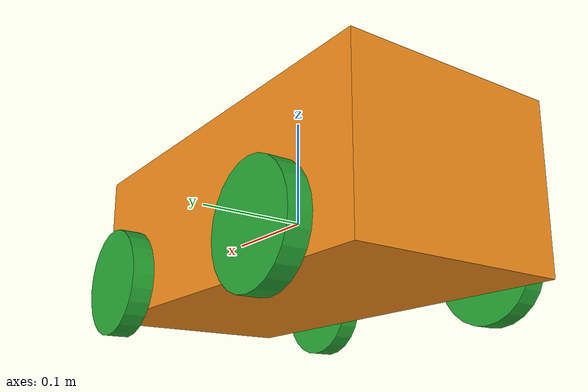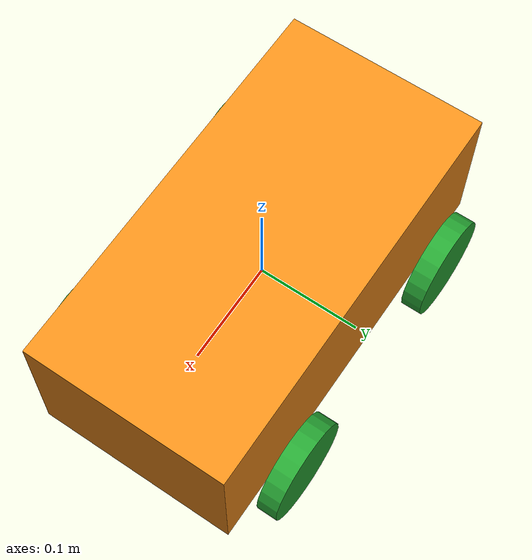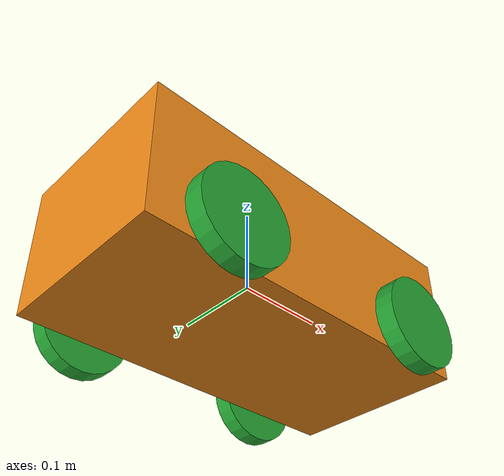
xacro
<?xml version='1.0'?>

<robot name="test_bot" xmlns:xacro="http://www.ros.org/wiki/xacro">

  <!-- RViz colors -->
  <xacro:include filename="$(find urdf_examples)/urdf/materials.xacro" />

  <link name="base_footprint"></link>

  <joint name="base_footprint_joint" type="fixed">
    <origin xyz="0 0 0" rpy="0 0 0" />
    <parent link="base_footprint"/>
    <child link="base_link" />
  </joint>

  <!-- Robot chassis -->
  <link name='base_link'>
    <pose>0 0 0.1 0 0 0</pose>

    <inertial>
      <mass value="15.0"/>
      <origin xyz="0.0 0 0" rpy="0 0 0"/>
      <inertia
          ixx="0.1" ixy="0" ixz="0"
          iyy="0.1" iyz="0"
          izz="0.1"
      />
    </inertial>

    <collision name='collision'>
      <origin xyz="0 0 0" rpy="0 0 0"/>
      <geometry>
        <box size=".4 .2 .15"/>
      </geometry>
    </collision>

    <visual name='base_link_visual'>
      <origin xyz="0 0 0" rpy="0 0 0"/>
      <geometry>
        <box size=".4 .2 .15"/>
        <!--mesh filename = "package://urdf_examples/meshes/base_link.dae"/-->
      </geometry>
      <material name="orange"/>
    </visual>

  </link>

  <!-- Wheels -->
  <joint type="continuous" name="left_front_wheel_joint">
    <origin xyz="0.12 0.12 -0.05" rpy="0 0 0"/>
    <child link="left_front_wheel"/>
    <parent link="base_link"/>
    <axis xyz="0 1 0" rpy="0 0 0"/>
    <limit effort="10000" velocity="1000"/>
    <dynamics damping="1.0" friction="1.0"/>
  </joint>

  <link name='left_front_wheel'>
    <inertial>
      <mass value="5.0"/>
      <origin xyz="0 0 0" rpy="0 1.5707 1.5707"/>
      <inertia
          ixx="0.1" ixy="0" ixz="0"
          iyy="0.1" iyz="0"
          izz="0.1"
      />
    </inertial>

    <collision name='collision'>
      <origin xyz="0 0 0" rpy="0 1.5707 1.5707"/>
      <geometry>
        <cylinder radius="0.05" length=".02"/>
      </geometry>
    </collision>

    <visual name='left_front_wheel_visual'>
      <origin xyz="0 0 0" rpy="0 1.5707 1.5707"/>
      <geometry>
        <cylinder radius="0.05" length=".02"/>
        <!--mesh filename = "package://urdf_examples/meshes/wheel.dae"/-->
      </geometry>
      <material name="green"/>
    </visual>
  </link>

  <joint type="continuous" name="right_front_wheel_joint">
    <origin xyz="0.12 -0.12 -0.05" rpy="0 0 0"/>
    <child link="right_front_wheel"/>
    <parent link="base_link"/>
    <axis xyz="0 1 0" rpy="0 0 0"/>
    <limit effort="10000" velocity="1000"/>
    <dynamics damping="1.0" friction="1.0"/>
  </joint>

  <link name='right_front_wheel'>
    <inertial>
      <mass value="5.0"/>
      <origin xyz="0 0 0" rpy="0 1.5707 1.5707"/>
      <inertia
          ixx="0.1" ixy="0" ixz="0"
          iyy="0.1" iyz="0"
          izz="0.1"
      />
    </inertial>

    <collision name='collision'>
      <origin xyz="0 0 0" rpy="0 1.5707 1.5707"/>
      <geometry>
        <cylinder radius="0.05" length=".02"/>
      </geometry>
    </collision>

    <visual name='right_front_wheel_visual'>
      <origin xyz="0 0 0" rpy="0 1.5707 1.5707"/>
      <geometry>
        <cylinder radius="0.05" length=".02"/>
        <!--mesh filename = "package://urdf_examples/meshes/wheel.dae"/-->
      </geometry>
      <material name="green"/>
    </visual>
  </link>

  <joint type="continuous" name="left_rear_wheel_joint">
    <origin xyz="-0.12 0.12 -0.05" rpy="0 0 0"/>
    <child link="left_rear_wheel"/>
    <parent link="base_link"/>
    <axis xyz="0 1 0" rpy="0 0 0"/>
    <limit effort="10000" velocity="1000"/>
    <dynamics damping="1.0" friction="1.0"/>
  </joint>

  <link name='left_rear_wheel'>
    <inertial>
      <mass value="5.0"/>
      <origin xyz="0 0 0" rpy="0 1.5707 1.5707"/>
      <inertia
          ixx="0.1" ixy="0" ixz="0"
          iyy="0.1" iyz="0"
          izz="0.1"
      />
    </inertial>

    <collision name='collision'>
      <origin xyz="0 0 0" rpy="0 1.5707 1.5707"/>
      <geometry>
        <cylinder radius="0.05" length=".02"/>
      </geometry>
    </collision>

    <visual name='left_rear_wheel_visual'>
      <origin xyz="0 0 0" rpy="0 1.5707 1.5707"/>
      <geometry>
        <cylinder radius="0.05" length=".02"/>
        <!--mesh filename = "package://urdf_examples/meshes/wheel.dae"/-->
      </geometry>
      <material name="green"/>
    </visual>
  </link>

  <joint type="continuous" name="right_rear_wheel_joint">
    <origin xyz="-0.12 -0.12 -0.05" rpy="0 0 0"/>
    <child link="right_rear_wheel"/>
    <parent link="base_link"/>
    <axis xyz="0 1 0" rpy="0 0 0"/>
    <limit effort="10000" velocity="1000"/>
    <dynamics damping="1.0" friction="1.0"/>
  </joint>

  <link name='right_rear_wheel'>
    <inertial>
      <mass value="5.0"/>
      <origin xyz="0 0 0" rpy="0 1.5707 1.5707"/>
      <inertia
          ixx="0.1" ixy="0" ixz="0"
          iyy="0.1" iyz="0"
          izz="0.1"
      />
    </inertial>

    <collision name='collision'>
      <origin xyz="0 0 0" rpy="0 1.5707 1.5707"/>
      <geometry>
        <cylinder radius="0.05" length=".02"/>
      </geometry>
    </collision>

    <visual name='right_rear_wheel_visual'>
      <origin xyz="0 0 0" rpy="0 1.5707 1.5707"/>
      <geometry>
        <cylinder radius="0.05" length=".02"/>
        <!--mesh filename = "package://urdf_examples/meshes/wheel.dae"/-->
      </geometry>
      <material name="green"/>
    </visual>
  </link>

</robot>
